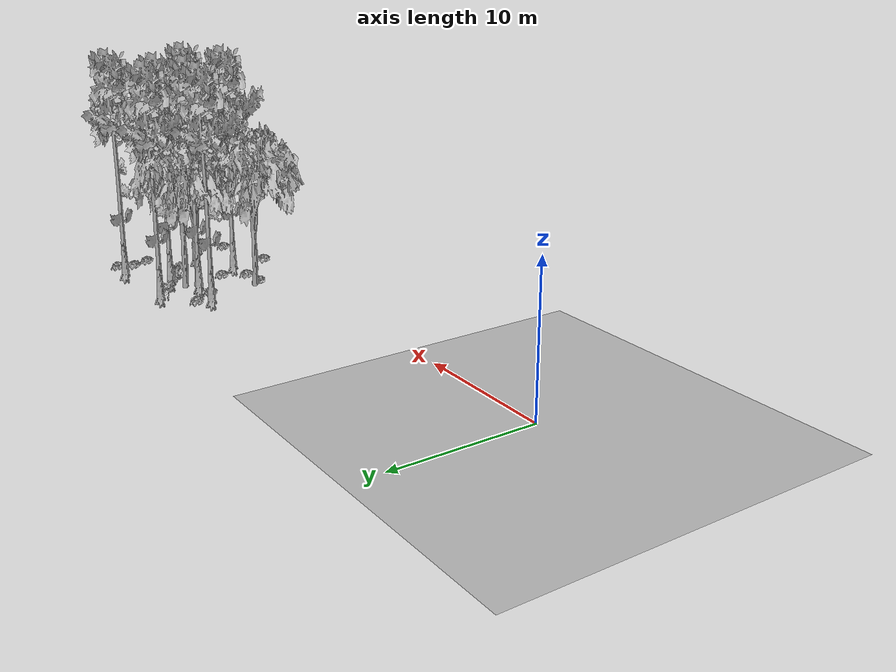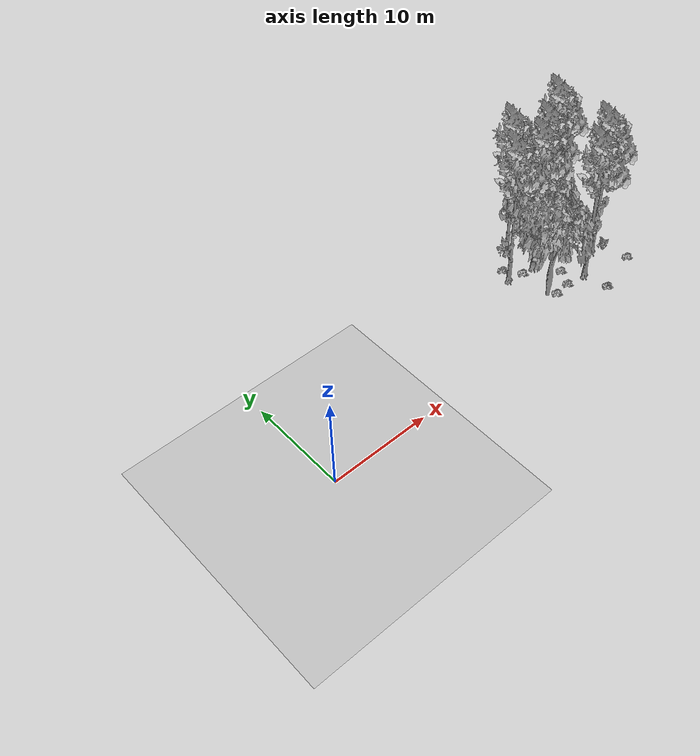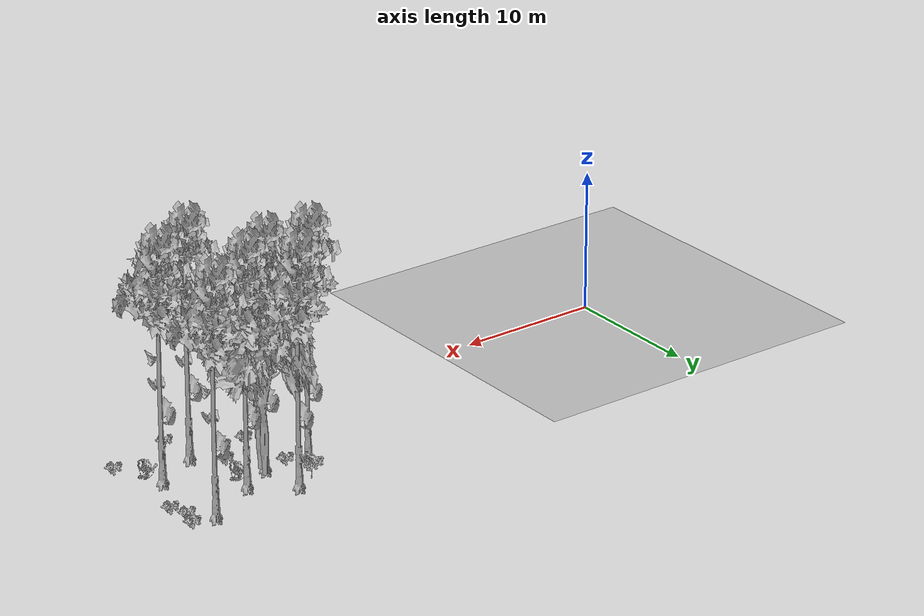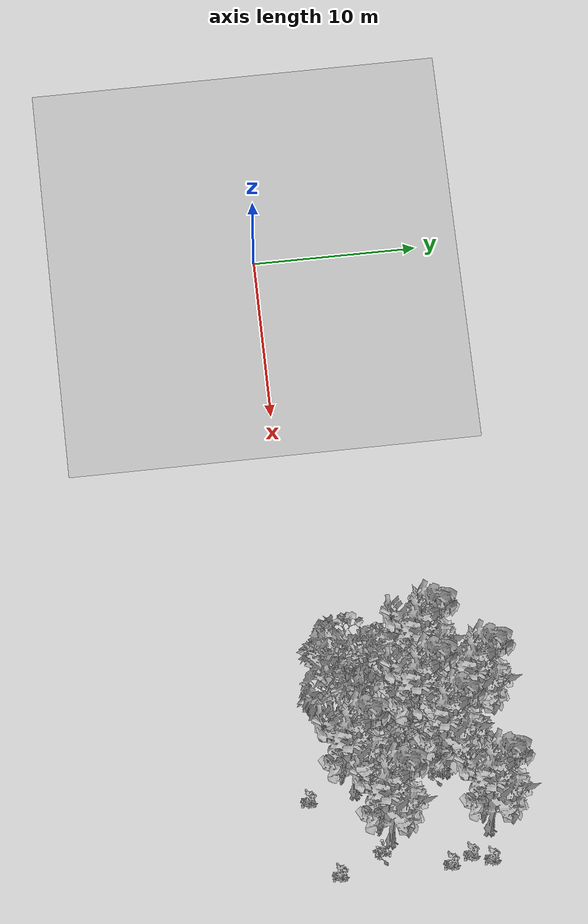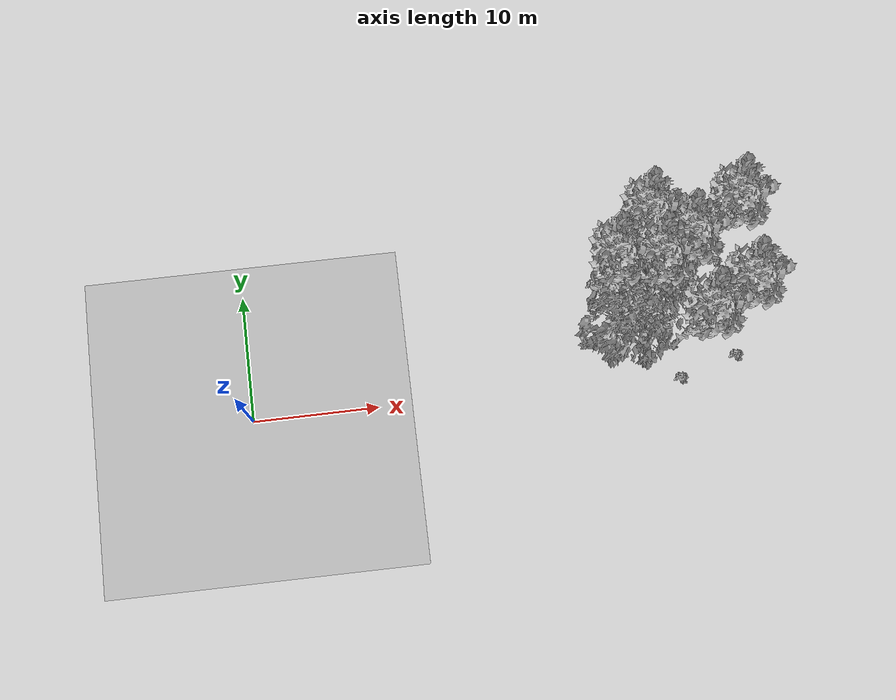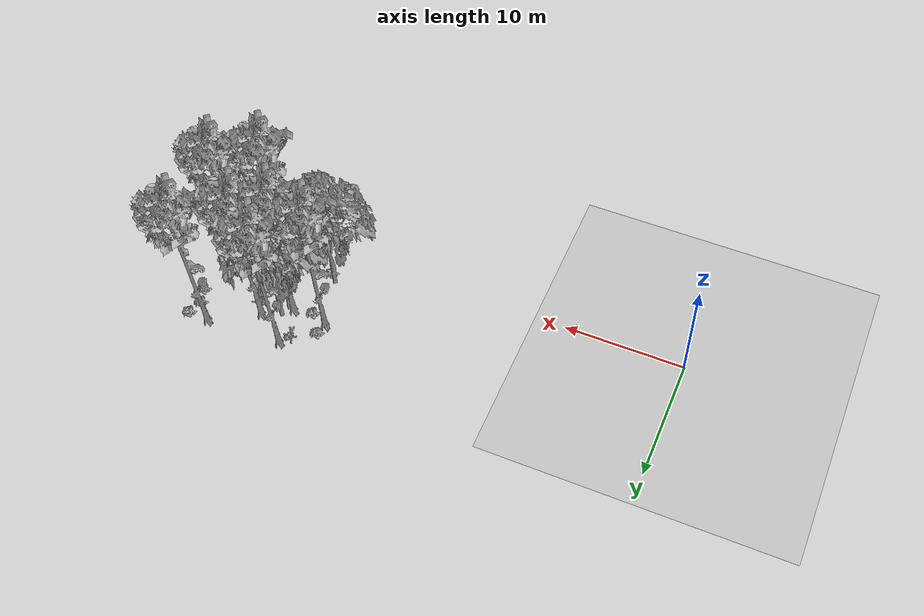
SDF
<sdf version="1.7">
 <world name="default">
  <model name="ground_plane">
   <static>1</static>
   <link name="link">
    <collision name="collision">
     <pose>-50 0 0 0 -0 0</pose>
     <geometry><plane><normal>0 0 1</normal><size>80 80</size></plane></geometry>
     <surface><contact><ode><min_depth>0.01</min_depth><max_vel>0</max_vel></ode></contact></surface>
    </collision>
    <visual name="grass">
     <cast_shadows>0</cast_shadows>
     <geometry>
      <mesh>
       <scale>0.46714285714285714 0.46714285714285714 0.1</scale>
       <uri>file://grass_plane/meshes/grass_plane.dae</uri>
      </mesh>
     </geometry>
    </visual>
   </link>
  </model>
  <model name="Tree 146">
   <static>1</static>
   <pose>33.24717270373469 7.908820074317269 0 1.57079 -0 0</pose>
   <link name="link">
    <collision name="collision">
     <geometry><mesh><scale>3.5 5 3.5</scale><uri>model://tree_9/meshes/tree_9.obj</uri></mesh></geometry>
    </collision>
    <visual name="visual">
     <geometry><mesh><scale>3.5 5 3.5</scale><uri>model://tree_9/meshes/tree_9.obj</uri></mesh></geometry>
    </visual>
   </link>
  </model>
  <model name="Tree 209">
   <static>1</static>
   <pose>31.012390712247424 6.601586751017621 0 1.57079 -0 0</pose>
   <link name="link">
    <collision name="collision">
     <geometry><mesh><scale>3.5 5 3.5</scale><uri>model://tree_9/meshes/tree_9.obj</uri></mesh></geometry>
    </collision>
    <visual name="visual">
     <geometry><mesh><scale>3.5 5 3.5</scale><uri>model://tree_9/meshes/tree_9.obj</uri></mesh></geometry>
    </visual>
   </link>
  </model>
  <model name="Tree 239">
   <static>1</static>
   <pose>30.61525057853254 9.797274019034688 0 1.57079 -0 0</pose>
   <link name="link">
    <collision name="collision">
     <geometry><mesh><scale>3.5 5 3.5</scale><uri>model://tree_9/meshes/tree_9.obj</uri></mesh></geometry>
    </collision>
    <visual name="visual">
     <geometry><mesh><scale>3.5 5 3.5</scale><uri>model://tree_9/meshes/tree_9.obj</uri></mesh></geometry>
    </visual>
   </link>
  </model>
  <model name="Tree 283">
   <static>1</static>
   <pose>33.952824201293154 2.417769940038575 0 1.57079 -0 0</pose>
   <link name="link">
    <collision name="collision">
     <geometry><mesh><scale>3.5 5 3.5</scale><uri>model://tree_9/meshes/tree_9.obj</uri></mesh></geometry>
    </collision>
    <visual name="visual">
     <geometry><mesh><scale>3.5 5 3.5</scale><uri>model://tree_9/meshes/tree_9.obj</uri></mesh></geometry>
    </visual>
   </link>
  </model>
  <model name="Tree 342">
   <static>1</static>
   <pose>36.985477622010904 10.071382399505538 0 1.57079 -0 0</pose>
   <link name="link">
    <collision name="collision">
     <geometry><mesh><scale>3.5 5 3.5</scale><uri>model://tree_9/meshes/tree_9.obj</uri></mesh></geometry>
    </collision>
    <visual name="visual">
     <geometry><mesh><scale>3.5 5 3.5</scale><uri>model://tree_9/meshes/tree_9.obj</uri></mesh></geometry>
    </visual>
   </link>
  </model>
  <model name="Tree 384">
   <static>1</static>
   <pose>31.260070798629272 6.569739078200797 0 1.57079 -0 0</pose>
   <link name="link">
    <collision name="collision">
     <geometry><mesh><scale>3.5 5 3.5</scale><uri>model://tree_2/meshes/tree_2.obj</uri></mesh></geometry>
    </collision>
    <visual name="visual">
     <geometry><mesh><scale>3.5 5 3.5</scale><uri>model://tree_2/meshes/tree_2.obj</uri></mesh></geometry>
    </visual>
   </link>
  </model>
  <model name="Tree 428">
   <static>1</static>
   <pose>37.10101288503721 4.189562265976647 0 1.57079 -0 0</pose>
   <link name="link">
    <collision name="collision">
     <geometry><mesh><scale>3.5 5 3.5</scale><uri>model://tree_9/meshes/tree_9.obj</uri></mesh></geometry>
    </collision>
    <visual name="visual">
     <geometry><mesh><scale>3.5 5 3.5</scale><uri>model://tree_9/meshes/tree_9.obj</uri></mesh></geometry>
    </visual>
   </link>
  </model>
  <model name="Tree 479">
   <static>1</static>
   <pose>29.02421034781578 2.9045308207130276 0 1.57079 -0 0</pose>
   <link name="link">
    <collision name="collision">
     <geometry><mesh><scale>3.5 5 3.5</scale><uri>model://tree_2/meshes/tree_2.obj</uri></mesh></geometry>
    </collision>
    <visual name="visual">
     <geometry><mesh><scale>3.5 5 3.5</scale><uri>model://tree_2/meshes/tree_2.obj</uri></mesh></geometry>
    </visual>
   </link>
  </model>
  <model name="Tree 506">
   <static>1</static>
   <pose>27.98307638190485 6.966299236549659 0 1.57079 -0 0</pose>
   <link name="link">
    <collision name="collision">
     <geometry><mesh><scale>3.5 5 3.5</scale><uri>model://tree_9/meshes/tree_9.obj</uri></mesh></geometry>
    </collision>
    <visual name="visual">
     <geometry><mesh><scale>3.5 5 3.5</scale><uri>model://tree_9/meshes/tree_9.obj</uri></mesh></geometry>
    </visual>
   </link>
  </model>
  <model name="Tree 552">
   <static>1</static>
   <pose>31.498676902773553 7.406798570584058 0 1.57079 -0 0</pose>
   <link name="link">
    <collision name="collision">
     <geometry><mesh><scale>3.5 5 3.5</scale><uri>model://tree_2/meshes/tree_2.obj</uri></mesh></geometry>
    </collision>
    <visual name="visual">
     <geometry><mesh><scale>3.5 5 3.5</scale><uri>model://tree_2/meshes/tree_2.obj</uri></mesh></geometry>
    </visual>
   </link>
  </model>
  <model name="Bush 9">
   <static>1</static>
   <pose>29.754828782790298 2.2917614282231753 0 1.57079 -0 0</pose>
   <link name="link">
    <collision name="collision">
     <geometry><mesh><scale>2 2 2</scale><uri>model://bush_2/meshes/bush_2.obj</uri></mesh></geometry>
     <surface><contact><collide_without_contact>false</collide_without_contact></contact></surface>
    </collision>
    <visual name="visual">
     <geometry><mesh><scale>2 2 2</scale><uri>model://bush_2/meshes/bush_2.obj</uri></mesh></geometry>
    </visual>
   </link>
  </model>
  <model name="Bush 41">
   <static>1</static>
   <pose>37.897001928970795 3.498906132712534 0 1.57079 -0 0</pose>
   <link name="link">
    <collision name="collision">
     <geometry><mesh><scale>2 2 2</scale><uri>model://bush_4/meshes/bush_4.obj</uri></mesh></geometry>
     <surface><contact><collide_without_contact>false</collide_without_contact></contact></surface>
    </collision>
    <visual name="visual">
     <geometry><mesh><scale>2 2 2</scale><uri>model://bush_4/meshes/bush_4.obj</uri></mesh></geometry>
    </visual>
   </link>
  </model>
  <model name="Bush 90">
   <static>1</static>
   <pose>38.72550683942811 7.606384919458797 0 1.57079 -0 0</pose>
   <link name="link">
    <collision name="collision">
     <geometry><mesh><scale>2 2 2</scale><uri>model://bush_2/meshes/bush_2.obj</uri></mesh></geometry>
     <surface><contact><collide_without_contact>false</collide_without_contact></contact></surface>
    </collision>
    <visual name="visual">
     <geometry><mesh><scale>2 2 2</scale><uri>model://bush_2/meshes/bush_2.obj</uri></mesh></geometry>
    </visual>
   </link>
  </model>
  <model name="Bush 134">
   <static>1</static>
   <pose>29.347559403840577 6.3969343287475695 0 1.57079 -0 0</pose>
   <link name="link">
    <collision name="collision">
     <geometry><mesh><scale>2 2 2</scale><uri>model://bush_2/meshes/bush_2.obj</uri></mesh></geometry>
     <surface><contact><collide_without_contact>false</collide_without_contact></contact></surface>
    </collision>
    <visual name="visual">
     <geometry><mesh><scale>2 2 2</scale><uri>model://bush_2/meshes/bush_2.obj</uri></mesh></geometry>
    </visual>
   </link>
  </model>
  <model name="Bush 136">
   <static>1</static>
   <pose>31.48823455064887 2.4453541393022817 0 1.57079 -0 0</pose>
   <link name="link">
    <collision name="collision">
     <geometry><mesh><scale>2 2 2</scale><uri>model://bush_2/meshes/bush_2.obj</uri></mesh></geometry>
     <surface><contact><collide_without_contact>false</collide_without_contact></contact></surface>
    </collision>
    <visual name="visual">
     <geometry><mesh><scale>2 2 2</scale><uri>model://bush_2/meshes/bush_2.obj</uri></mesh></geometry>
    </visual>
   </link>
  </model>
  <model name="Bush 249">
   <static>1</static>
   <pose>28.16325891604957 7.997433986770368 0 1.57079 -0 0</pose>
   <link name="link">
    <collision name="collision">
     <geometry><mesh><scale>2 2 2</scale><uri>model://bush_2/meshes/bush_2.obj</uri></mesh></geometry>
     <surface><contact><collide_without_contact>false</collide_without_contact></contact></surface>
    </collision>
    <visual name="visual">
     <geometry><mesh><scale>2 2 2</scale><uri>model://bush_2/meshes/bush_2.obj</uri></mesh></geometry>
    </visual>
   </link>
  </model>
  <model name="Bush 268">
   <static>1</static>
   <pose>32.359641630697894 4.092106994974969 0 1.57079 -0 0</pose>
   <link name="link">
    <collision name="collision">
     <geometry><mesh><scale>2 2 2</scale><uri>model://bush_2/meshes/bush_2.obj</uri></mesh></geometry>
     <surface><contact><collide_without_contact>false</collide_without_contact></contact></surface>
    </collision>
    <visual name="visual">
     <geometry><mesh><scale>2 2 2</scale><uri>model://bush_2/meshes/bush_2.obj</uri></mesh></geometry>
    </visual>
   </link>
  </model>
  <model name="Bush 296">
   <static>1</static>
   <pose>33.47291096581807 7.167036265040537 0 1.57079 -0 0</pose>
   <link name="link">
    <collision name="collision">
     <geometry><mesh><scale>2 2 2</scale><uri>model://bush_4/meshes/bush_4.obj</uri></mesh></geometry>
     <surface><contact><collide_without_contact>false</collide_without_contact></contact></surface>
    </collision>
    <visual name="visual">
     <geometry><mesh><scale>2 2 2</scale><uri>model://bush_4/meshes/bush_4.obj</uri></mesh></geometry>
    </visual>
   </link>
  </model>
  <model name="Bush 391">
   <static>1</static>
   <pose>38.72779507955744 1.0083661671925483 0 1.57079 -0 0</pose>
   <link name="link">
    <collision name="collision">
     <geometry><mesh><scale>2 2 2</scale><uri>model://bush_2/meshes/bush_2.obj</uri></mesh></geometry>
     <surface><contact><collide_without_contact>false</collide_without_contact></contact></surface>
    </collision>
    <visual name="visual">
     <geometry><mesh><scale>2 2 2</scale><uri>model://bush_2/meshes/bush_2.obj</uri></mesh></geometry>
    </visual>
   </link>
  </model>
  <model name="Bush 475">
   <static>1</static>
   <pose>38.67146092503705 10.022449143416601 0 1.57079 -0 0</pose>
   <link name="link">
    <collision name="collision">
     <geometry><mesh><scale>2 2 2</scale><uri>model://bush_2/meshes/bush_2.obj</uri></mesh></geometry>
     <surface><contact><collide_without_contact>false</collide_without_contact></contact></surface>
    </collision>
    <visual name="visual">
     <geometry><mesh><scale>2 2 2</scale><uri>model://bush_2/meshes/bush_2.obj</uri></mesh></geometry>
    </visual>
   </link>
  </model>
  <model name="Bush 479">
   <static>1</static>
   <pose>34.09906182802351 -0.3468115933899796 0 1.57079 -0 0</pose>
   <link name="link">
    <collision name="collision">
     <geometry><mesh><scale>2 2 2</scale><uri>model://bush_2/meshes/bush_2.obj</uri></mesh></geometry>
     <surface><contact><collide_without_contact>false</collide_without_contact></contact></surface>
    </collision>
    <visual name="visual">
     <geometry><mesh><scale>2 2 2</scale><uri>model://bush_2/meshes/bush_2.obj</uri></mesh></geometry>
    </visual>
   </link>
  </model>
  <model name="Bush 586">
   <static>1</static>
   <pose>38.29140581768597 8.825767620331305 0 1.57079 -0 0</pose>
   <link name="link">
    <collision name="collision">
     <geometry><mesh><scale>2 2 2</scale><uri>model://bush_2/meshes/bush_2.obj</uri></mesh></geometry>
     <surface><contact><collide_without_contact>false</collide_without_contact></contact></surface>
    </collision>
    <visual name="visual">
     <geometry><mesh><scale>2 2 2</scale><uri>model://bush_2/meshes/bush_2.obj</uri></mesh></geometry>
    </visual>
   </link>
  </model>
  <model name="Bush 607">
   <static>1</static>
   <pose>29.599849161968663 9.66955597087393 0 1.57079 -0 0</pose>
   <link name="link">
    <collision name="collision">
     <geometry><mesh><scale>2 2 2</scale><uri>model://bush_5/meshes/bush_5.obj</uri></mesh></geometry>
     <surface><contact><collide_without_contact>false</collide_without_contact></contact></surface>
    </collision>
    <visual name="visual">
     <geometry><mesh><scale>2 2 2</scale><uri>model://bush_5/meshes/bush_5.obj</uri></mesh></geometry>
    </visual>
   </link>
  </model>
 </world>
</sdf>
